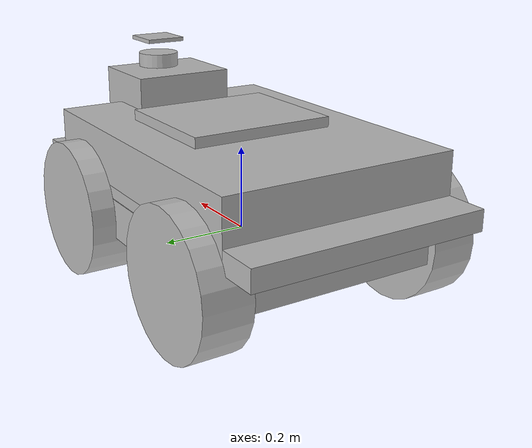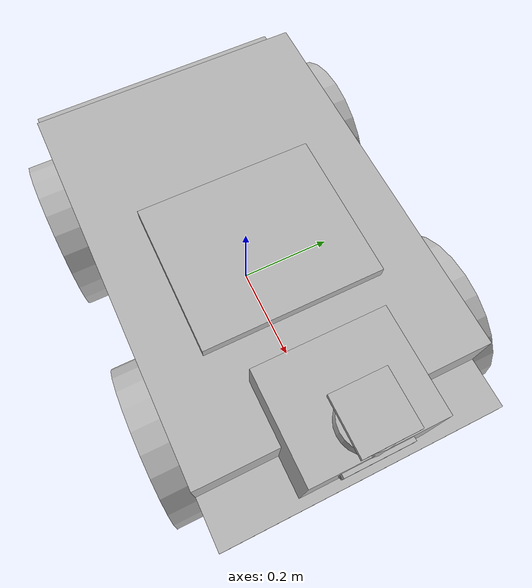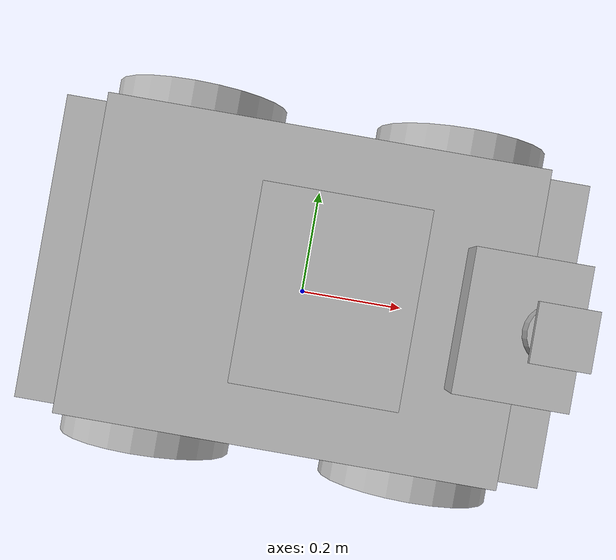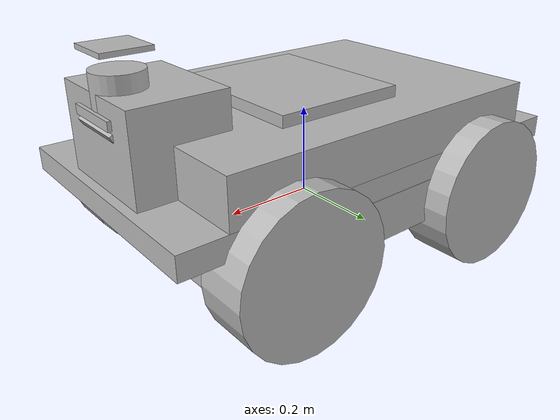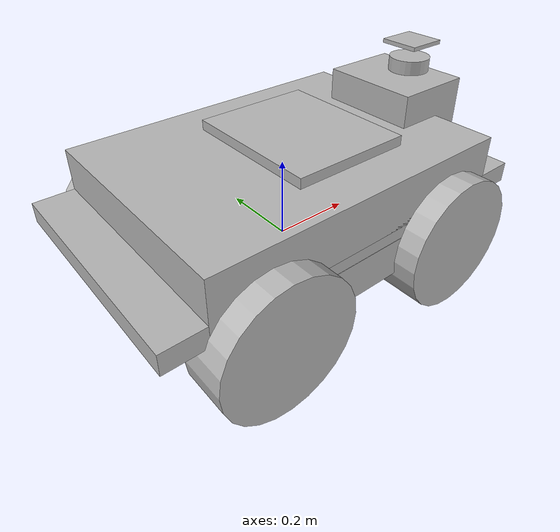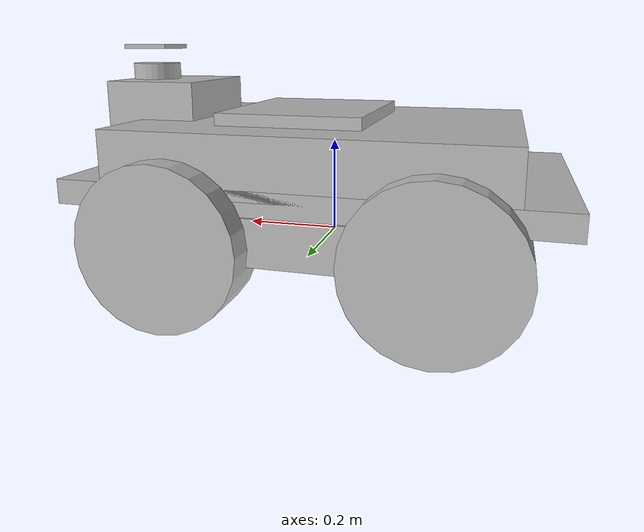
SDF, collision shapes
<?xml version='1.0' encoding='utf-8'?>
<sdf version="1.6">
  <model name="marble_husky" canonical_link="base_link">
    <link name="base_link">
      <pose frame="">0 0 0 0 -0 0</pose>

      <inertial>
        <pose frame="">-0.000543 -0.084945 0.062329 0 -0 0</pose>
        <mass>46.064</mass>
        <inertia>
          <ixx>0.615397</ixx>
          <ixy>-0.0240585</ixy>
          <ixz>-0.120749</ixz>
          <iyy>1.75388</iyy>
          <iyz>-0.0028322</iyz>
          <izz>2.03641</izz>
        </inertia>
      </inertial>

      <collision name="base_link_collision">
        <pose frame="">0 0 0.12 0 0 0</pose>
        <geometry>
          <box>
            <size>0.9874 0.5709 0.05</size>
          </box>
        </geometry>
      </collision>
      <collision name="base_link_collision_bottom">
        <pose frame="">0 0 0.046 0 0 0</pose>
        <geometry>
          <box>
            <size>0.80 0.5709 0.095</size>
          </box>
        </geometry>
      </collision>
      <collision name="base_link_collision_1">
        <pose frame="">0 0 0.185625 0 -0 0</pose>
        <geometry>
          <box>
            <size>0.78992 0.5709 0.12375</size>
          </box>
        </geometry>
      </collision>
      <collision name="base_link_fixed_joint_lump__camera/camera_link_collision_2">
        <pose frame="">0.478 0 0.285 0 -0 0</pose>
        <geometry>
          <box>
            <size>0.0078 0.13 0.0192</size>
          </box>
        </geometry>
        <surface>
          <contact>
            <ode>
              <kp>1e+13</kp>
              <kd>1</kd>
            </ode>
          </contact>
          <friction>
            <ode>
              <mu2>1</mu2>
              <fdir1>0 0 0</fdir1>
            </ode>
          </friction>
        </surface>
      </collision>
      <collision name="base_link_fixed_joint_lump__camera/camera_link_collision_3">
        <pose frame="">0.473 0 0.260 0 0.5236 0</pose>
        <geometry>
          <box>
            <size>0.0078 0.13 0.0192</size>
          </box>
        </geometry>
        <surface>
          <contact>
            <ode>
              <kp>1e+13</kp>
              <kd>1</kd>
            </ode>
          </contact>
          <friction>
            <ode>
              <mu2>1</mu2>
              <fdir1>0 0 0</fdir1>
            </ode>
          </friction>
        </surface>
      </collision>
      <collision name="base_link_fixed_joint_lump__velodyne_base_link_collision_6">
        <pose frame="">0.424 0 0.327 0 -0 0</pose>
        <geometry>
          <cylinder>
            <length>0.0717</length>
            <radius>0.0516</radius>
          </cylinder>
        </geometry>
      </collision>
      <collision name="base_link_fixed_joint_lump__velodyne_gimbal_plate_base_link_collision_7">
        <pose frame="">0.424 0 0.400 0 -0 0</pose>
        <geometry>
          <box>
            <size>0.1 0.1 0.01</size>
          </box>
        </geometry>
      </collision>
      <collision name="base_link_fixed_joint_lump__sensor_tower_8">
       <pose frame="">0.374 0 0.215 0 -0 0</pose>
        <geometry>
          <box>
            <size>0.2 0.25 0.225</size>
          </box>
        </geometry>
      </collision>
      <collision name="base_link_fixed_joint_lump__computer_block_9">
       <pose frame="">0.050 0 0.185 0 -0 0</pose>
        <geometry>
          <box>
            <size>0.30 0.355 0.175</size>
          </box>
        </geometry>
      </collision>

      <visual name="base_link_visual">
        <pose frame="">0 0 0 0 -0 0</pose>
        <geometry>
          <mesh>
            <scale>1 1 1</scale>
            <uri>meshes/base_link.dae</uri>
          </mesh>
        </geometry>
      </visual>
      <visual name="base_link_fixed_joint_lump__camera/camera_link_visual_2">
        <pose frame="">0.478 0 0.285 0 -0 0</pose>
        <geometry>
          <mesh>
            <uri>meshes/realsense.dae</uri>
          </mesh>
        </geometry>
      </visual>
      <visual name="base_link_fixed_joint_lump__front_bumper_link_visual_3">
        <pose frame="">0.48 0 0.091 0 -0 0</pose>
        <geometry>
          <mesh>
            <scale>1 1 1</scale>
            <uri>meshes/bumper.dae</uri>
          </mesh>
        </geometry>
      </visual>
      <visual name="base_link_fixed_joint_lump__rear_bumper_link_visual_4">
        <pose frame="">-0.48 0 0.091 0 -0 3.14159</pose>
        <geometry>
          <mesh>
            <scale>1 1 1</scale>
            <uri>meshes/bumper.dae</uri>
          </mesh>
        </geometry>
      </visual>
      <visual name="base_link_fixed_joint_lump__top_chassis_link_visual_5">
        <pose frame="">0 0 0 0 -0 0</pose>
        <geometry>
          <mesh>
            <scale>1 1 1</scale>
            <uri>meshes/top_chassis.dae</uri>
          </mesh>
        </geometry>
      </visual>
      <!-- Bottom cylinder of Ouster/Velodyne 3D Lidar -->
      <visual name="base_link_fixed_joint_lump__velodyne_base_link_visual_10">
        <pose frame="">0.424 0 0.327 0 -0 0</pose>
        <geometry>
          <mesh>
            <scale>1 1 1</scale>
            <uri>meshes/VLP16_base_1.dae</uri>
          </mesh>
        </geometry>
      </visual>
      <!-- Top cylinder of Ouster/Velodyne 3D Lidar -->
      <visual name="base_link_fixed_joint_lump__velodyne_base_link_visual_11">
        <pose frame="">0.424 0 0.327 0 -0 0</pose>
        <geometry>
          <mesh>
            <scale>1 1 1</scale>
            <uri>meshes/VLP16_base_2.dae</uri>
          </mesh>
        </geometry>
      </visual>
      <!-- Main cylinder of Ouster/Velodyne 3D Lidar -->
      <visual name="base_link_fixed_joint_lump__velodyne_visual_12">
        <pose frame="">0.424 0 0.327 0 -0 0</pose>
        <geometry>
          <mesh>
            <scale>1 1 1</scale>
            <uri>meshes/VLP16_scan.dae</uri>
          </mesh>
        </geometry>
      </visual>
      <visual name="base_link_fixed_joint_lump__sensor_tower_16">
       <pose frame="">0.374 0 0.215 0 -0 0</pose>
        <geometry>
          <box>
            <size>0.2 0.25 0.225</size>
          </box>
        </geometry>
      </visual>
      <visual name="base_link_fixed_joint_lump__computer_block_17">
       <pose frame="">0.050 0 0.185 0 -0 0</pose>
        <geometry>
          <box>
            <size>0.29 0.415 0.078</size>
          </box>
        </geometry>
      </visual>

      <!-- Based on Intel realsense D435 (intrinsics and distortion not modeled)-->
      <sensor name="camera_front" type="rgbd_camera">
        <camera name="camera_front">
            <horizontal_fov>1.5184</horizontal_fov>
            <lens>
                <intrinsics>
                    <!-- fx = fy = width / ( 2 * tan (hfov / 2 ) ) -->
                    <fx>168.61097</fx>
                    <fy>168.61097</fy>
                    <!-- cx = ( width + 1 ) / 2 -->
                    <cx>160.5</cx>
                    <!-- cy = ( height + 1 ) / 2 -->
                    <cy>120.5</cy>
                    <s>0</s>
                </intrinsics>
            </lens>
            <distortion>
                <k1>0.0</k1>
                <k2>0.0</k2>
                <k3>0.0</k3>
                <p1>0.0</p1>
                <p2>0.0</p2>
                <center>0.5 0.5</center>
            </distortion>
            <image>
                <width>320</width>
                <height>240</height>
                <format>R8G8B8</format>
            </image>
            <clip>
                <near>0.01</near>
                <far>300</far>
            </clip>
            <depth_camera>
              <clip>
                <near>0.1</near>
                <far>10</far>
              </clip>
            </depth_camera>
            <noise>
                <type>gaussian</type>
                <mean>0</mean>
                <stddev>0.007</stddev>
            </noise>
        </camera>
        <always_on>1</always_on>
        <update_rate>30</update_rate>
        <visualize>1</visualize>
        <pose frame="">0.468 0 0.360 0 -0 0</pose>
      </sensor>
      <!-- OS1-128 3D Laser Configuration (10x2048 or 10x1024 or 20x1024 or 20x512 as possible (rate) x (hor. res.) configs)-->
      <sensor name="laser" type="gpu_lidar">
        <pose frame="">0.424 0 0.387 0 -0 0</pose>
        <topic>marble_husky/lidar</topic>
        <visualize>1</visualize>
        <update_rate>10</update_rate>
        <always_on>1</always_on>
        <lidar>
          <scan>
            <horizontal>
              <samples>2048</samples>
              <resolution>1</resolution>
              <min_angle>-3.14159</min_angle>
              <max_angle>3.14159</max_angle>
            </horizontal>
            <vertical>
              <samples>128</samples>
              <resolution>1</resolution>
              <min_angle>-0.2897</min_angle>
              <max_angle>0.2897</max_angle>
            </vertical>
          </scan>
          <range>
            <min>0.8</min>
            <max>120</max>
            <resolution>0.01</resolution>
          </range>
          <noise>
            <type>gaussian</type>
            <mean>0</mean>
            <stddev>0.01</stddev>
          </noise>
        </lidar>
      </sensor>
      <!-- IMU -->
      <sensor name="imu_sensor" type="imu">
        <always_on>1</always_on>
        <update_rate>200</update_rate>
        <visualize>true</visualize>
        <topic>marble_husky/imu</topic>
        <imu>
            <enable_orientation>0</enable_orientation>
            <angular_velocity>
                <x>
                    <noise type="gaussian">
                        <mean>0</mean>
                        <stddev>0.009</stddev>
                        <bias_mean>0.00075</bias_mean>
                        <bias_stddev>0.005</bias_stddev>
                        <dynamic_bias_stddev>0.00002</dynamic_bias_stddev>
                        <dynamic_bias_correlation_time>400.0</dynamic_bias_correlation_time>
                        <precision>0.00025</precision>
                    </noise>
                </x>
                <y>
                    <noise type="gaussian">
                        <mean>0</mean>
                        <stddev>0.009</stddev>
                        <bias_mean>0.00075</bias_mean>
                        <bias_stddev>0.005</bias_stddev>
                        <dynamic_bias_stddev>0.00002</dynamic_bias_stddev>
                        <dynamic_bias_correlation_time>400.0</dynamic_bias_correlation_time>
                        <precision>0.00025</precision>
                    </noise>
                </y>
                <z>
                    <noise type="gaussian">
                        <mean>0</mean>
                        <stddev>0.009</stddev>
                        <bias_mean>0.00075</bias_mean>
                        <bias_stddev>0.005</bias_stddev>
                        <dynamic_bias_stddev>0.00002</dynamic_bias_stddev>
                        <dynamic_bias_correlation_time>400.0</dynamic_bias_correlation_time>
                        <precision>0.00025</precision>
                    </noise>
                </z>
            </angular_velocity>
            <linear_acceleration>
                <x>
                    <noise type="gaussian">
                        <mean>0</mean>
                        <stddev>0.021</stddev>
                        <bias_mean>0.05</bias_mean>
                        <bias_stddev>0.0075</bias_stddev>
                        <dynamic_bias_stddev>0.000375</dynamic_bias_stddev>
                        <dynamic_bias_correlation_time>175.0</dynamic_bias_correlation_time>
                        <precision>0.005</precision>
                    </noise>
                </x>
                <y>
                    <noise type="gaussian">
                        <mean>0</mean>
                        <stddev>0.021</stddev>
                        <bias_mean>0.05</bias_mean>
                        <bias_stddev>0.0075</bias_stddev>
                        <dynamic_bias_stddev>0.000375</dynamic_bias_stddev>
                        <dynamic_bias_correlation_time>175.0</dynamic_bias_correlation_time>
                        <precision>0.005</precision>
                    </noise>
                </y>
                <z>
                    <noise type="gaussian">
                        <mean>0</mean>
                        <stddev>0.021</stddev>
                        <bias_mean>0.05</bias_mean>
                        <bias_stddev>0.0075</bias_stddev>
                        <dynamic_bias_stddev>0.000375</dynamic_bias_stddev>
                        <dynamic_bias_correlation_time>175.0</dynamic_bias_correlation_time>
                        <precision>0.005</precision>
                    </noise>
                </z>
            </linear_acceleration>
        </imu>
      </sensor>

      <gravity>1</gravity>
      <velocity_decay/>

    </link>
    <link name="front_left_wheel_link">
      <pose frame="">0.256 0.2854 0.03282 0 -0 0</pose>
      <inertial>
        <pose frame="">0 0 0 0 -0 0</pose>
        <mass>2.637</mass>
        <inertia>
          <ixx>0.02467</ixx>
          <ixy>0</ixy>
          <ixz>0</ixz>
          <iyy>0.04411</iyy>
          <iyz>0</iyz>
          <izz>0.02467</izz>
        </inertia>
      </inertial>
      <collision name="front_left_wheel_link_collision">
        <pose frame="">0 0 0 1.5707963267948966 -0 0</pose>
        <geometry>
          <cylinder>
            <length>0.1143</length>
            <radius>0.1651</radius>
          </cylinder>
        </geometry>
        <surface>
          <contact>
            <ode>
              <kp>1e+07</kp>
              <kd>1</kd>
            </ode>
          </contact>
          <friction>
            <ode>
              <mu>0.2</mu>
              <mu2>10.5</mu2>
              <fdir1>0 1 0</fdir1>
            </ode>
          </friction>
        </surface>
      </collision>
      <visual name="front_left_wheel_link_visual">
        <pose frame="">0 0 0 0 -0 0</pose>
        <geometry>
          <mesh>
            <scale>1 1 1</scale>
            <uri>meshes/wheel.dae</uri>
          </mesh>
        </geometry>
      </visual>
      <gravity>1</gravity>
      <velocity_decay/>
    </link>
    <joint name="front_left_wheel_joint" type="revolute">
      <child>front_left_wheel_link</child>
      <parent>base_link</parent>
      <axis>
        <xyz>0 1 0</xyz>
        <limit>
          <lower>-1e+16</lower>
          <upper>1e+16</upper>
        </limit>
        <dynamics>
          <spring_reference>0</spring_reference>
          <spring_stiffness>0</spring_stiffness>
        </dynamics>
        <use_parent_model_frame>1</use_parent_model_frame>
      </axis>
    </joint>
    <link name="front_right_wheel_link">
      <pose frame="">0.256 -0.2854 0.03282 0 -0 0</pose>
      <inertial>
        <pose frame="">0 0 0 0 -0 0</pose>
        <mass>2.637</mass>
        <inertia>
          <ixx>0.02467</ixx>
          <ixy>0</ixy>
          <ixz>0</ixz>
          <iyy>0.04411</iyy>
          <iyz>0</iyz>
          <izz>0.02467</izz>
        </inertia>
      </inertial>
      <collision name="front_right_wheel_link_collision">
        <pose frame="">0 0 0 1.5707963267948966 -0 0</pose>
        <geometry>
          <cylinder>
            <length>0.1143</length>
            <radius>0.1651</radius>
          </cylinder>
        </geometry>
        <surface>
          <contact>
            <ode>
              <kp>1e+07</kp>
              <kd>1</kd>
            </ode>
          </contact>
          <friction>
            <ode>
              <mu>0.2</mu>
              <mu2>10.5</mu2>
              <fdir1>0 0 1</fdir1>
            </ode>
            <ode>
              <mu>100000.0</mu>
              <mu2>100000.0</mu2>
              <slip1>0.0</slip1>
              <slip2>0.0</slip2>
            </ode>
          </friction>
        </surface>
      </collision>
      <visual name="front_right_wheel_link_visual">
        <pose frame="">0 0 0 0 -0 0</pose>
        <geometry>
          <mesh>
            <scale>1 1 1</scale>
            <uri>meshes/wheel.dae</uri>
          </mesh>
        </geometry>
      </visual>
      <gravity>1</gravity>
      <velocity_decay/>
    </link>
    <joint name="front_right_wheel_joint" type="revolute">
      <child>front_right_wheel_link</child>
      <parent>base_link</parent>
      <axis>
        <xyz>0 1 0</xyz>
        <limit>
          <lower>-1e+16</lower>
          <upper>1e+16</upper>
        </limit>
        <dynamics>
          <spring_reference>0</spring_reference>
          <spring_stiffness>0</spring_stiffness>
        </dynamics>
        <use_parent_model_frame>1</use_parent_model_frame>
      </axis>
    </joint>
    <link name="rear_left_wheel_link">
      <pose frame="">-0.256 0.2854 0.03282 0 -0 0</pose>
      <inertial>
        <pose frame="">0 0 0 0 -0 0</pose>
        <mass>2.637</mass>
        <inertia>
          <ixx>0.02467</ixx>
          <ixy>0</ixy>
          <ixz>0</ixz>
          <iyy>0.04411</iyy>
          <iyz>0</iyz>
          <izz>0.02467</izz>
        </inertia>
      </inertial>
      <collision name="rear_left_wheel_link_collision">
        <pose frame="">0 0 0 1.5707963267948966 -0 0</pose>
        <geometry>
          <cylinder>
            <length>0.1143</length>
            <radius>0.1651</radius>
          </cylinder>
        </geometry>
        <surface>
          <contact>
            <ode>
              <kp>1e+07</kp>
              <kd>1</kd>
            </ode>
          </contact>
          <friction>
            <ode>
              <mu>0.2</mu>
              <mu2>10.5</mu2>
              <fdir1>0 1 0</fdir1>
            </ode>
          </friction>
        </surface>
      </collision>
      <visual name="rear_left_wheel_link_visual">
        <pose frame="">0 0 0 0 -0 0</pose>
        <geometry>
          <mesh>
            <scale>1 1 1</scale>
            <uri>meshes/wheel.dae</uri>
          </mesh>
        </geometry>
      </visual>
      <gravity>1</gravity>
      <velocity_decay/>
    </link>
    <joint name="rear_left_wheel_joint" type="revolute">
      <child>rear_left_wheel_link</child>
      <parent>base_link</parent>
      <axis>
        <xyz>0 1 0</xyz>
        <limit>
          <lower>-1e+16</lower>
          <upper>1e+16</upper>
        </limit>
        <dynamics>
          <spring_reference>0</spring_reference>
          <spring_stiffness>0</spring_stiffness>
        </dynamics>
        <use_parent_model_frame>1</use_parent_model_frame>
      </axis>
    </joint>
    <link name="rear_right_wheel_link">
      <pose frame="">-0.256 -0.2854 0.03282 0 -0 0</pose>
      <inertial>
        <pose frame="">0 0 0 0 -0 0</pose>
        <mass>2.637</mass>
        <inertia>
          <ixx>0.02467</ixx>
          <ixy>0</ixy>
          <ixz>0</ixz>
          <iyy>0.04411</iyy>
          <iyz>0</iyz>
          <izz>0.02467</izz>
        </inertia>
      </inertial>
      <collision name="rear_right_wheel_link_collision">
        <pose frame="">0 0 0 1.5707963267948966 -0 0</pose>
        <geometry>
          <cylinder>
            <length>0.1143</length>
            <radius>0.1651</radius>
          </cylinder>
        </geometry>
        <surface>
          <contact>
            <ode>
              <kp>1e+07</kp>
              <kd>1</kd>
            </ode>
          </contact>
          <friction>
            <ode>
              <mu>0.2</mu>
              <mu2>10.5</mu2>
              <fdir1>0 0 1</fdir1>
            </ode>
          </friction>
        </surface>
      </collision>
      <visual name="rear_right_wheel_link_visual">
        <pose frame="">0 0 0 0 -0 0</pose>
        <geometry>
          <mesh>
            <scale>1 1 1</scale>
            <uri>meshes/wheel.dae</uri>
          </mesh>
        </geometry>
      </visual>
      <gravity>1</gravity>
      <velocity_decay/>
    </link>
    <joint name="rear_right_wheel_joint" type="revolute">
      <child>rear_right_wheel_link</child>
      <parent>base_link</parent>
      <axis>
        <xyz>0 1 0</xyz>
        <limit>
          <lower>-1e+16</lower>
          <upper>1e+16</upper>
        </limit>
        <dynamics>
          <spring_reference>0</spring_reference>
          <spring_stiffness>0</spring_stiffness>
        </dynamics>
        <use_parent_model_frame>1</use_parent_model_frame>
      </axis>
    </joint>
    <static>0</static>

    <!-- Plugins -->
    <plugin filename="gz-sim-diff-drive-system"
      name="gz::sim::systems::DiffDrive">
      <left_joint>rear_left_wheel_joint</left_joint>
      <left_joint>front_left_wheel_joint</left_joint>
      <right_joint>rear_right_wheel_joint</right_joint>
      <right_joint>front_right_wheel_joint</right_joint>
      <wheel_separation>0.5708</wheel_separation>
      <wheel_radius>0.1651</wheel_radius>
      <odom_publish_frequency>50</odom_publish_frequency>
      <topic>/marble_husky/command/velocity</topic>
      <max_linear_velocity>2.0</max_linear_velocity>
      <max_angular_velocity>1</max_angular_velocity>
      <max_linear_acceleration>3</max_linear_acceleration>
      <max_angular_acceleration>2</max_angular_acceleration>
    </plugin>
    <plugin filename="gz-sim-odometry-publisher-system"
      name="gz::sim::systems::OdometryPublisher">
      <odom_frame>world</odom_frame>
      <robot_base_frame>marble_husky</robot_base_frame>
      <odom_publish_frequency>50</odom_publish_frequency>
      <odom_topic>marble_husky/odometry</odom_topic>
      <odom_covariance_topic>marble_husky/odometry_with_covariance</odom_covariance_topic>
      <dimensions>3</dimensions>
    </plugin>
    <plugin filename="gz-sim-pose-publisher-system"
      name="gz::sim::systems::PosePublisher">
      <publish_link_pose>true</publish_link_pose>
      <publish_visual_pose>true</publish_visual_pose>
      <publish_collision_pose>true</publish_collision_pose>
      <publish_sensor_pose>true</publish_sensor_pose>
      <publish_model_pose>true</publish_model_pose>
      <publish_nested_model_pose>false</publish_nested_model_pose>
      <use_pose_vector_msg>true</use_pose_vector_msg>
      <static_publisher>true</static_publisher>
      <static_update_frequency>200</static_update_frequency>
    </plugin>
  </model>
</sdf>
